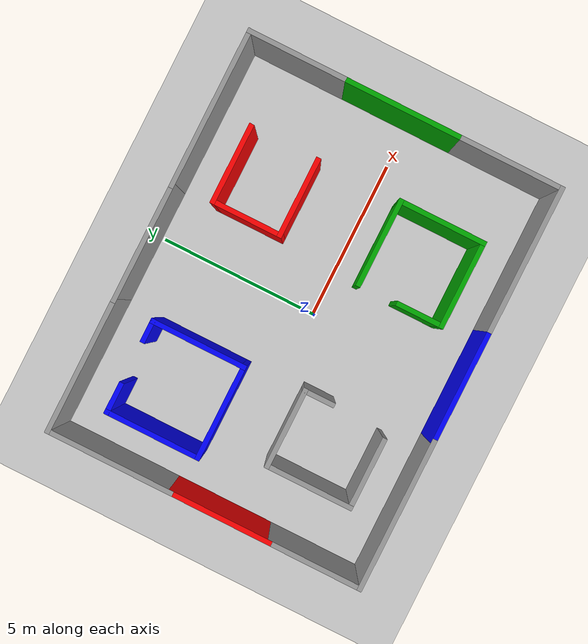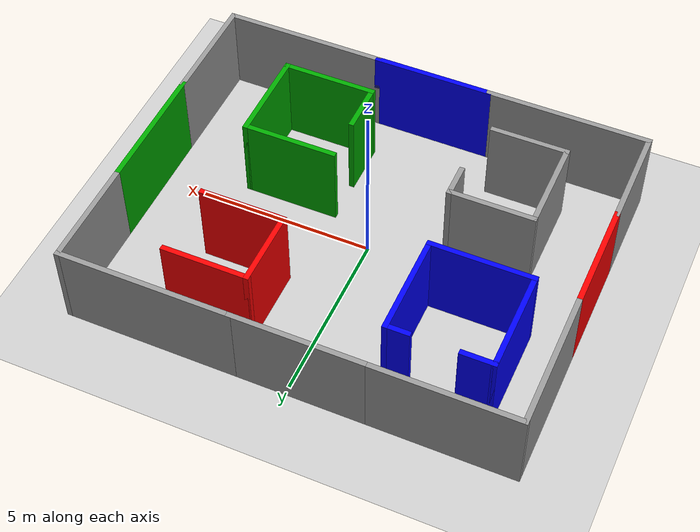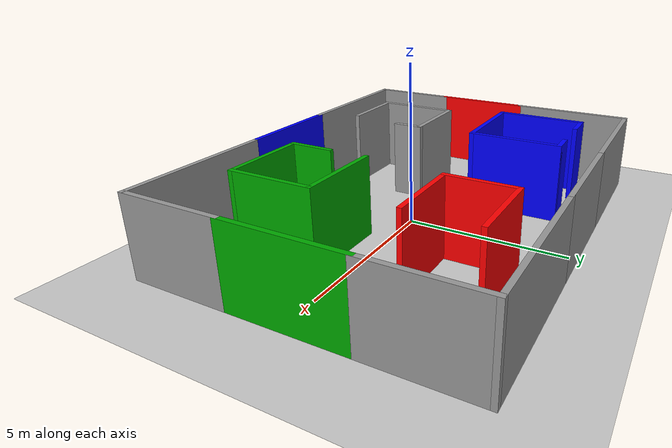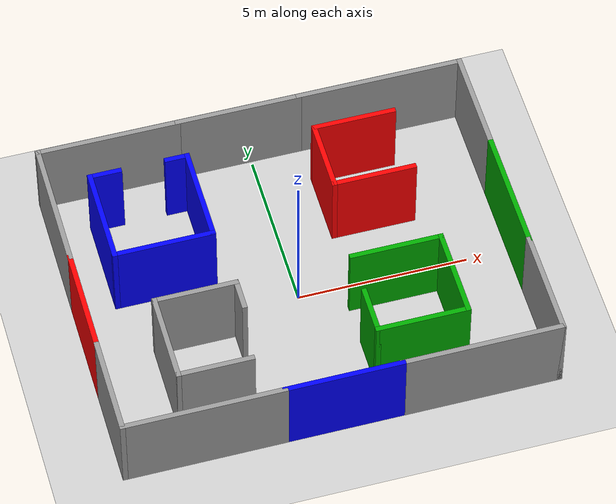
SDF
<sdf version="1.7">
 <world name="default">
  <light name="sun" type="directional">
   <pose>0 0 10 0 -0 0</pose>
   <diffuse>0.8 0.8 0.8 1</diffuse>
   <specular>0.2 0.2 0.2 1</specular>
   <attenuation>
    <range>1000</range>
    <constant>0.9</constant>
    <linear>0.01</linear>
    <quadratic>0.001</quadratic>
   </attenuation>
   <direction>-0.5 0.1 -0.9</direction>
   <spot><inner_angle>0</inner_angle><outer_angle>0</outer_angle><falloff>0</falloff></spot>
  </light>
  <model name="ground_plane">
   <static>1</static>
   <link name="link">
    <collision name="collision">
     <geometry><plane><normal>0 0 1</normal><size>100 100</size></plane></geometry>
     <surface>
      <contact><collide_bitmask>65535</collide_bitmask></contact>
      <friction><ode><mu>100</mu><mu2>50</mu2></ode></friction>
     </surface>
    </collision>
    <visual name="visual">
     <cast_shadows>0</cast_shadows>
     <geometry><plane><normal>0 0 1</normal><size>100 100</size></plane></geometry>
     <material>
      <script><uri>file://media/materials/scripts/gazebo.material</uri><name>Gazebo/Grey</name></script>
     </material>
    </visual>
   </link>
  </model>
  <gravity>0 0 -9.8</gravity>
  <magnetic_field>6e-06 2.3e-05 -4.2e-05</magnetic_field>
  <atmosphere type="adiabatic"/>
  <physics type="ode">
   <max_step_size>0.001</max_step_size>
   <real_time_factor>1</real_time_factor>
   <real_time_update_rate>1000</real_time_update_rate>
  </physics>
  <scene><ambient>0.4 0.4 0.4 1</ambient><background>0.7 0.7 0.7 1</background><shadows>1</shadows></scene>
  <spherical_coordinates>
   <surface_model>EARTH_WGS84</surface_model>
   <latitude_deg>0</latitude_deg>
   <longitude_deg>0</longitude_deg>
   <elevation>0</elevation>
   <heading_deg>0</heading_deg>
  </spherical_coordinates>
  <model name="RosFinal">
   <pose>0.021077 0.279288 0 0 -0 0</pose>
   <link name="Wall_31">
    <collision name="Wall_31_Collision">
     <geometry><box><size>4.75 0.15 2.5</size></box></geometry>
     <pose>0 0 1.25 0 -0 0</pose>
    </collision>
    <visual name="Wall_31_Visual">
     <pose>0 0 1.25 0 -0 0</pose>
     <geometry><box><size>4.75 0.15 2.5</size></box></geometry>
     <material>
      <script><uri>file://media/materials/scripts/gazebo.material</uri><name>Gazebo/Grey</name></script>
      <ambient>1 1 1 1</ambient>
     </material>
     <meta><layer>0</layer></meta>
    </visual>
    <pose>-3.975 -4.9 0 0 -0 3.14159</pose>
   </link>
   <link name="Wall_33">
    <collision name="Wall_33_Collision">
     <geometry><box><size>3.5 0.15 2.5</size></box></geometry>
     <pose>0 0 1.25 0 -0 0</pose>
    </collision>
    <visual name="Wall_33_Visual">
     <pose>0 0 1.25 0 -0 0</pose>
     <geometry><box><size>3.5 0.15 2.5</size></box></geometry>
     <material>
      <script><uri>file://media/materials/scripts/gazebo.material</uri><name>Gazebo/Grey</name></script>
      <ambient>0 0 1 1</ambient>
     </material>
     <meta><layer>0</layer></meta>
    </visual>
    <pose>0 -4.9 0 0 -0 0</pose>
   </link>
   <link name="Wall_35">
    <collision name="Wall_35_Collision">
     <geometry><box><size>4.75 0.15 2.5</size></box></geometry>
     <pose>0 0 1.25 0 -0 0</pose>
    </collision>
    <visual name="Wall_35_Visual">
     <pose>0 0 1.25 0 -0 0</pose>
     <geometry><box><size>4.75 0.15 2.5</size></box></geometry>
     <material>
      <script><uri>file://media/materials/scripts/gazebo.material</uri><name>Gazebo/Grey</name></script>
      <ambient>1 1 1 1</ambient>
     </material>
     <meta><layer>0</layer></meta>
    </visual>
    <pose>3.975 -4.9 0 0 -0 0</pose>
   </link>
   <link name="Wall_36">
    <collision name="Wall_36_Collision">
     <geometry><box><size>3.25 0.15 2.5</size></box></geometry>
     <pose>0 0 1.25 0 -0 0</pose>
    </collision>
    <visual name="Wall_36_Visual">
     <pose>0 0 1.25 0 -0 0</pose>
     <geometry><box><size>3.25 0.15 2.5</size></box></geometry>
     <material>
      <script><uri>file://media/materials/scripts/gazebo.material</uri><name>Gazebo/Grey</name></script>
      <ambient>1 1 1 1</ambient>
     </material>
     <meta><layer>0</layer></meta>
    </visual>
    <pose>6.275 -3.35 0 0 -0 1.5708</pose>
   </link>
   <link name="Wall_37">
    <collision name="Wall_37_Collision">
     <geometry><box><size>3.75 0.15 2.5</size></box></geometry>
     <pose>0 0 1.25 0 -0 0</pose>
    </collision>
    <visual name="Wall_37_Visual">
     <pose>0 0 1.25 0 -0 0</pose>
     <geometry><box><size>3.75 0.15 2.5</size></box></geometry>
     <material>
      <script><uri>file://media/materials/scripts/gazebo.material</uri><name>Gazebo/Grey</name></script>
      <ambient>0 0.666667 0 1</ambient>
     </material>
     <meta><layer>0</layer></meta>
    </visual>
    <pose>6.275 0 0 0 -0 1.5708</pose>
   </link>
   <link name="Wall_38">
    <collision name="Wall_38_Collision">
     <geometry><box><size>3.25 0.15 2.5</size></box></geometry>
     <pose>0 0 1.25 0 -0 0</pose>
    </collision>
    <visual name="Wall_38_Visual">
     <pose>0 0 1.25 0 -0 0</pose>
     <geometry><box><size>3.25 0.15 2.5</size></box></geometry>
     <material>
      <script><uri>file://media/materials/scripts/gazebo.material</uri><name>Gazebo/Grey</name></script>
      <ambient>1 1 1 1</ambient>
     </material>
     <meta><layer>0</layer></meta>
    </visual>
    <pose>6.275 3.35 0 0 -0 1.5708</pose>
   </link>
   <link name="Wall_42">
    <collision name="Wall_42_Collision">
     <geometry><box><size>5 0.15 2.5</size></box></geometry>
     <pose>0 0 1.25 0 -0 0</pose>
    </collision>
    <visual name="Wall_42_Visual">
     <pose>0 0 1.25 0 -0 0</pose>
     <geometry><box><size>5 0.15 2.5</size></box></geometry>
     <material>
      <script><uri>file://media/materials/scripts/gazebo.material</uri><name>Gazebo/Grey</name></script>
      <ambient>1 1 1 1</ambient>
     </material>
     <meta><layer>0</layer></meta>
    </visual>
    <pose>3.85 4.9 0 0 -0 3.14159</pose>
   </link>
   <link name="Wall_43">
    <collision name="Wall_43_Collision">
     <geometry><box><size>3.75 0.15 2.5</size></box></geometry>
     <pose>0 0 1.25 0 -0 0</pose>
    </collision>
    <visual name="Wall_43_Visual">
     <pose>0 0 1.25 0 -0 0</pose>
     <geometry><box><size>3.75 0.15 2.5</size></box></geometry>
     <material>
      <script><uri>file://media/materials/scripts/gazebo.material</uri><name>Gazebo/Grey</name></script>
      <ambient>0 0 0 1</ambient>
     </material>
     <meta><layer>0</layer></meta>
    </visual>
    <pose>-0.375 4.9 0 0 -0 3.14159</pose>
   </link>
   <link name="Wall_44">
    <collision name="Wall_44_Collision">
     <geometry><box><size>4.25 0.15 2.5</size></box></geometry>
     <pose>0 0 1.25 0 -0 0</pose>
    </collision>
    <visual name="Wall_44_Visual">
     <pose>0 0 1.25 0 -0 0</pose>
     <geometry><box><size>4.25 0.15 2.5</size></box></geometry>
     <material>
      <script><uri>file://media/materials/scripts/gazebo.material</uri><name>Gazebo/Grey</name></script>
      <ambient>1 1 1 1</ambient>
     </material>
     <meta><layer>0</layer></meta>
    </visual>
    <pose>-4.225 4.9 0 0 -0 3.14159</pose>
   </link>
   <link name="Wall_45">
    <collision name="Wall_45_Collision">
     <geometry><box><size>4 0.15 2.5</size></box></geometry>
     <pose>0 0 1.25 0 -0 0</pose>
    </collision>
    <visual name="Wall_45_Visual">
     <pose>0 0 1.25 0 -0 0</pose>
     <geometry><box><size>4 0.15 2.5</size></box></geometry>
     <material>
      <script><uri>file://media/materials/scripts/gazebo.material</uri><name>Gazebo/Grey</name></script>
      <ambient>1 1 1 1</ambient>
     </material>
     <meta><layer>0</layer></meta>
    </visual>
    <pose>-6.275 2.975 0 0 -0 -1.5708</pose>
   </link>
   <link name="Wall_46">
    <collision name="Wall_46_Collision">
     <geometry><box><size>3.25 0.15 2.5</size></box></geometry>
     <pose>0 0 1.25 0 -0 0</pose>
    </collision>
    <visual name="Wall_46_Visual">
     <pose>0 0 1.25 0 -0 0</pose>
     <geometry><box><size>3.25 0.15 2.5</size></box></geometry>
     <material>
      <script><uri>file://media/materials/scripts/gazebo.material</uri><name>Gazebo/Grey</name></script>
      <ambient>1 0 0 1</ambient>
     </material>
     <meta><layer>0</layer></meta>
    </visual>
    <pose>-6.275 -0.5 0 0 -0 -1.5708</pose>
   </link>
   <link name="Wall_47">
    <collision name="Wall_47_Collision">
     <geometry><box><size>3 0.15 2.5</size></box></geometry>
     <pose>0 0 1.25 0 -0 0</pose>
    </collision>
    <visual name="Wall_47_Visual">
     <pose>0 0 1.25 0 -0 0</pose>
     <geometry><box><size>3 0.15 2.5</size></box></geometry>
     <material>
      <script><uri>file://media/materials/scripts/gazebo.material</uri><name>Gazebo/Grey</name></script>
      <ambient>1 1 1 1</ambient>
     </material>
     <meta><layer>0</layer></meta>
    </visual>
    <pose>-6.275 -3.475 0 0 -0 -1.5708</pose>
   </link>
   <link name="Wall_50">
    <collision name="Wall_50_Collision">
     <geometry><box><size>1 0.15 2.5</size></box></geometry>
     <pose>0 0 1.25 0 -0 0</pose>
    </collision>
    <visual name="Wall_50_Visual">
     <pose>0 0 1.25 0 -0 0</pose>
     <geometry><box><size>1 0.15 2.5</size></box></geometry>
     <material>
      <script><uri>file://media/materials/scripts/gazebo.material</uri><name>Gazebo/Grey</name></script>
      <ambient>0 0 0 1</ambient>
     </material>
     <meta><layer>0</layer></meta>
    </visual>
    <pose>-2.0248 -1.4562 0 0 -0 -1.5708</pose>
   </link>
   <link name="Wall_52">
    <collision name="Wall_52_Collision">
     <geometry><box><size>2.5 0.15 2.5</size></box></geometry>
     <pose>0 0 1.25 0 -0 0</pose>
    </collision>
    <visual name="Wall_52_Visual">
     <pose>0 0 1.25 0 -0 0</pose>
     <geometry><box><size>2.5 0.15 2.5</size></box></geometry>
     <material>
      <script><uri>file://media/materials/scripts/gazebo.material</uri><name>Gazebo/Grey</name></script>
      <ambient>0 0 0 1</ambient>
     </material>
     <meta><layer>0</layer></meta>
    </visual>
    <pose>-3.1998 -1.0312 0 0 -0 3.14159</pose>
   </link>
   <link name="Wall_53">
    <collision name="Wall_53_Collision">
     <geometry><box><size>2.75 0.15 2.5</size></box></geometry>
     <pose>0 0 1.25 0 -0 0</pose>
    </collision>
    <visual name="Wall_53_Visual">
     <pose>0 0 1.25 0 -0 0</pose>
     <geometry><box><size>2.75 0.15 2.5</size></box></geometry>
     <material>
      <script><uri>file://media/materials/scripts/gazebo.material</uri><name>Gazebo/Grey</name></script>
      <ambient>0 0 0 1</ambient>
     </material>
     <meta><layer>0</layer></meta>
    </visual>
    <pose>-4.3748 -2.3312 0 0 -0 -1.5708</pose>
   </link>
   <link name="Wall_54">
    <collision name="Wall_54_Collision">
     <geometry><box><size>2.25 0.15 2.5</size></box></geometry>
     <pose>0 0 1.25 0 -0 0</pose>
    </collision>
    <visual name="Wall_54_Visual">
     <pose>0 0 1.25 0 -0 0</pose>
     <geometry><box><size>2.25 0.15 2.5</size></box></geometry>
     <material>
      <script><uri>file://media/materials/scripts/gazebo.material</uri><name>Gazebo/Grey</name></script>
      <ambient>0 0 0 1</ambient>
     </material>
     <meta><layer>0</layer></meta>
    </visual>
    <pose>-3.3248 -3.6312 0 0 -0 0</pose>
   </link>
   <link name="Wall_58">
    <collision name="Wall_58_Collision">
     <geometry><box><size>2.75 0.15 2.5</size></box></geometry>
     <pose>0 0 1.25 0 -0 0</pose>
    </collision>
    <visual name="Wall_58_Visual">
     <pose>0 0 1.25 0 -0 0</pose>
     <geometry><box><size>2.75 0.15 2.5</size></box></geometry>
     <material>
      <script><uri>file://media/materials/scripts/gazebo.material</uri><name>Gazebo/Grey</name></script>
      <ambient>0 0.666667 0 1</ambient>
     </material>
     <meta><layer>0</layer></meta>
    </visual>
    <pose>2.6252 -1.0312 0 0 -0 0</pose>
   </link>
   <link name="Wall_59">
    <collision name="Wall_59_Collision">
     <geometry><box><size>2.75 0.15 2.5</size></box></geometry>
     <pose>0 0 1.25 0 -0 0</pose>
    </collision>
    <visual name="Wall_59_Visual">
     <pose>0 0 1.25 0 -0 0</pose>
     <geometry><box><size>2.75 0.15 2.5</size></box></geometry>
     <material>
      <script><uri>file://media/materials/scripts/gazebo.material</uri><name>Gazebo/Grey</name></script>
      <ambient>0 0.666667 0 1</ambient>
     </material>
     <meta><layer>0</layer></meta>
    </visual>
    <pose>3.9252 -2.3312 0 0 -0 -1.5708</pose>
   </link>
   <link name="Wall_60">
    <collision name="Wall_60_Collision">
     <geometry><box><size>2.75 0.15 2.5</size></box></geometry>
     <pose>0 0 1.25 0 -0 0</pose>
    </collision>
    <visual name="Wall_60_Visual">
     <pose>0 0 1.25 0 -0 0</pose>
     <geometry><box><size>2.75 0.15 2.5</size></box></geometry>
     <material>
      <script><uri>file://media/materials/scripts/gazebo.material</uri><name>Gazebo/Grey</name></script>
      <ambient>0 0.666667 0 1</ambient>
     </material>
     <meta><layer>0</layer></meta>
    </visual>
    <pose>2.6252 -3.6312 0 0 -0 3.14159</pose>
   </link>
   <link name="Wall_61">
    <collision name="Wall_61_Collision">
     <geometry><box><size>1.5 0.15 2.5</size></box></geometry>
     <pose>0 0 1.25 0 -0 0</pose>
    </collision>
    <visual name="Wall_61_Visual">
     <pose>0 0 1.25 0 -0 0</pose>
     <geometry><box><size>1.5 0.15 2.5</size></box></geometry>
     <material>
      <script><uri>file://media/materials/scripts/gazebo.material</uri><name>Gazebo/Grey</name></script>
      <ambient>0 0.666667 0 1</ambient>
     </material>
     <meta><layer>0</layer></meta>
    </visual>
    <pose>1.3252 -2.9562 0 0 -0 1.5708</pose>
   </link>
   <link name="Wall_64">
    <collision name="Wall_64_Collision">
     <geometry><box><size>2.5 0.15 2.5</size></box></geometry>
     <pose>0 0 1.25 0 -0 0</pose>
    </collision>
    <visual name="Wall_64_Visual">
     <pose>0 0 1.25 0 -0 0</pose>
     <geometry><box><size>2.5 0.15 2.5</size></box></geometry>
     <material>
      <script><uri>file://media/materials/scripts/gazebo.material</uri><name>Gazebo/Grey</name></script>
      <ambient>1 0 0 1</ambient>
     </material>
     <meta><layer>0</layer></meta>
    </visual>
    <pose>2.72853 1.56704 0 0 -0 3.14159</pose>
   </link>
   <link name="Wall_66">
    <collision name="Wall_66_Collision">
     <geometry><box><size>2.5 0.15 2.5</size></box></geometry>
     <pose>0 0 1.25 0 -0 0</pose>
    </collision>
    <visual name="Wall_66_Visual">
     <pose>0 0 1.25 0 -0 0</pose>
     <geometry><box><size>2.5 0.15 2.5</size></box></geometry>
     <material>
      <script><uri>file://media/materials/scripts/gazebo.material</uri><name>Gazebo/Grey</name></script>
      <ambient>1 0 0 1</ambient>
     </material>
     <meta><layer>0</layer></meta>
    </visual>
    <pose>2.72853 3.66704 0 0 -0 0</pose>
   </link>
   <link name="Wall_68">
    <collision name="Wall_68_Collision">
     <geometry><box><size>2.25 0.15 2.5</size></box></geometry>
     <pose>0 0 1.25 0 -0 0</pose>
    </collision>
    <visual name="Wall_68_Visual">
     <pose>0 0 1.25 0 -0 0</pose>
     <geometry><box><size>2.25 0.15 2.5</size></box></geometry>
     <material>
      <script><uri>file://media/materials/scripts/gazebo.material</uri><name>Gazebo/Grey</name></script>
      <ambient>1 0 0 1</ambient>
     </material>
     <meta><layer>0</layer></meta>
    </visual>
    <pose>1.55353 2.61704 0 0 -0 -1.5708</pose>
   </link>
   <link name="Wall_70">
    <collision name="Wall_70_Collision">
     <geometry><box><size>0.75 0.15 2.5</size></box></geometry>
     <pose>0 0 1.25 0 -0 0</pose>
    </collision>
    <visual name="Wall_70_Visual">
     <pose>0 0 1.25 0 -0 0</pose>
     <geometry><box><size>0.75 0.15 2.5</size></box></geometry>
     <material>
      <script><uri>file://media/materials/scripts/gazebo.material</uri><name>Gazebo/Grey</name></script>
      <ambient>0 0 1 1</ambient>
     </material>
     <meta><layer>0</layer></meta>
    </visual>
    <pose>-2.50447 3.65647 0 0 -0 0</pose>
   </link>
   <link name="Wall_71">
    <collision name="Wall_71_Collision">
     <geometry><box><size>3 0.15 2.5</size></box></geometry>
     <pose>0 0 1.25 0 -0 0</pose>
    </collision>
    <visual name="Wall_71_Visual">
     <pose>0 0 1.25 0 -0 0</pose>
     <geometry><box><size>3 0.15 2.5</size></box></geometry>
     <material>
      <script><uri>file://media/materials/scripts/gazebo.material</uri><name>Gazebo/Grey</name></script>
      <ambient>0 0 1 1</ambient>
     </material>
     <meta><layer>0</layer></meta>
    </visual>
    <pose>-2.20447 2.23147 0 0 -0 -1.5708</pose>
   </link>
   <link name="Wall_72">
    <collision name="Wall_72_Collision">
     <geometry><box><size>3 0.15 2.5</size></box></geometry>
     <pose>0 0 1.25 0 -0 0</pose>
    </collision>
    <visual name="Wall_72_Visual">
     <pose>0 0 1.25 0 -0 0</pose>
     <geometry><box><size>3 0.15 2.5</size></box></geometry>
     <material>
      <script><uri>file://media/materials/scripts/gazebo.material</uri><name>Gazebo/Grey</name></script>
      <ambient>0 0 1 1</ambient>
     </material>
     <meta><layer>0</layer></meta>
    </visual>
    <pose>-3.62947 0.806468 0 0 -0 3.14159</pose>
   </link>
   <link name="Wall_73">
    <collision name="Wall_73_Collision">
     <geometry><box><size>3 0.15 2.5</size></box></geometry>
     <pose>0 0 1.25 0 -0 0</pose>
    </collision>
    <visual name="Wall_73_Visual">
     <pose>0 0 1.25 0 -0 0</pose>
     <geometry><box><size>3 0.15 2.5</size></box></geometry>
     <material>
      <script><uri>file://media/materials/scripts/gazebo.material</uri><name>Gazebo/Grey</name></script>
      <ambient>0 0 1 1</ambient>
     </material>
     <meta><layer>0</layer></meta>
    </visual>
    <pose>-5.05447 2.23147 0 0 -0 1.5708</pose>
   </link>
   <link name="Wall_74">
    <collision name="Wall_74_Collision">
     <geometry><box><size>1 0.15 2.5</size></box></geometry>
     <pose>0 0 1.25 0 -0 0</pose>
    </collision>
    <visual name="Wall_74_Visual">
     <pose>0 0 1.25 0 -0 0</pose>
     <geometry><box><size>1 0.15 2.5</size></box></geometry>
     <material>
      <script><uri>file://media/materials/scripts/gazebo.material</uri><name>Gazebo/Grey</name></script>
      <ambient>0 0 1 1</ambient>
     </material>
     <meta><layer>0</layer></meta>
    </visual>
    <pose>-4.62947 3.65647 0 0 -0 0</pose>
   </link>
   <static>1</static>
  </model>
 </world>
</sdf>
